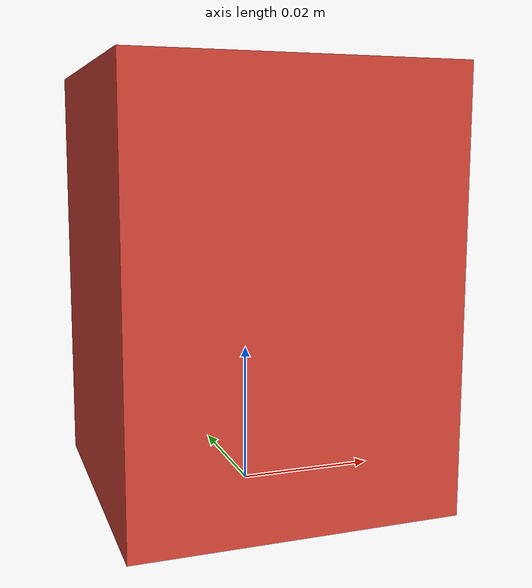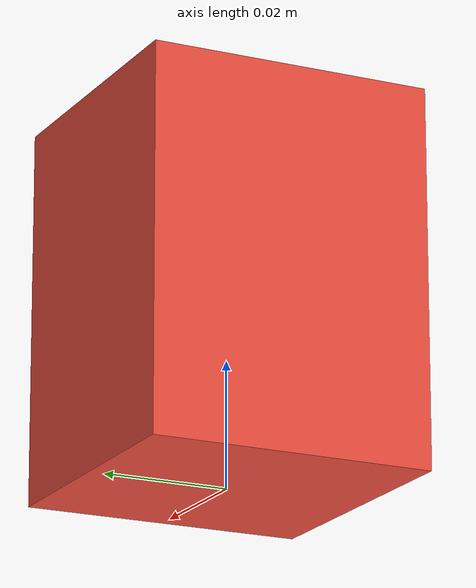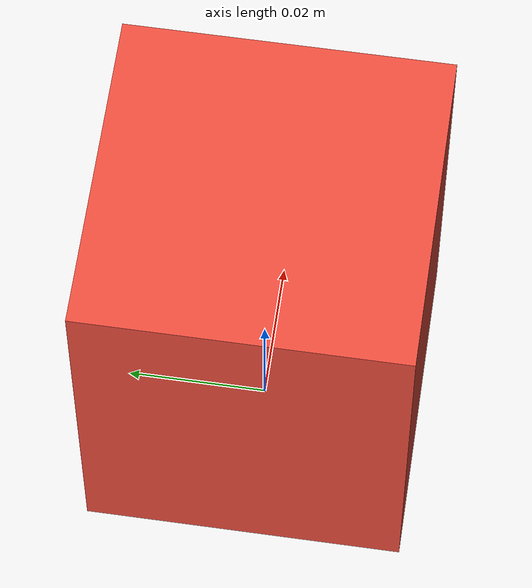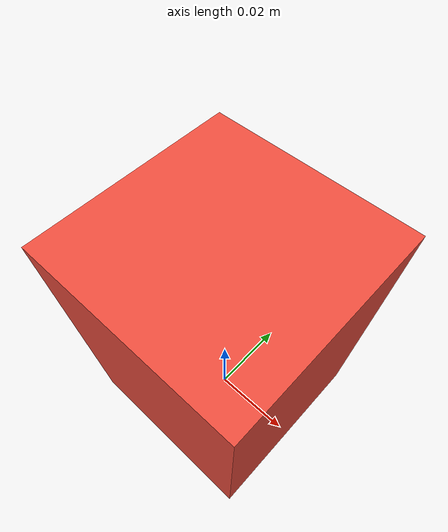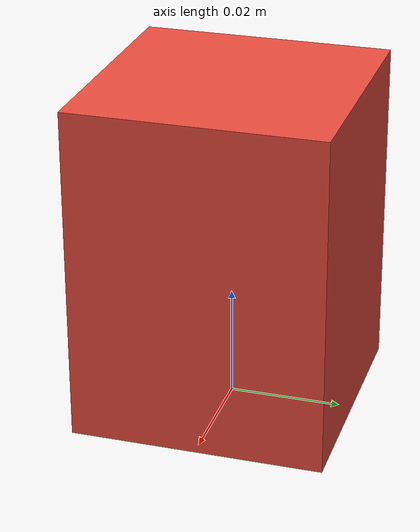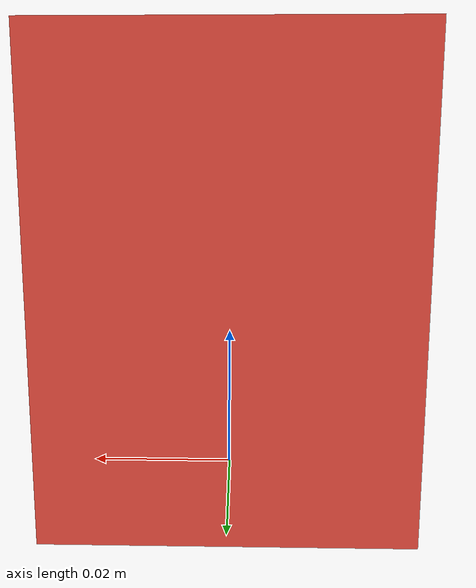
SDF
<?xml version="1.0" ?>
<sdf version="1.7">
  <model name="pick_target_block">
    <static>false</static>
    <allow_auto_disable>false</allow_auto_disable>
    <link name="block_link">
      <pose>0 0 0.03 0 0 0</pose>
      <inertial>
        <mass>0.05</mass>
        <inertia>
          <ixx>0.000023</ixx>
          <iyy>0.000023</iyy>
          <izz>0.000017</izz>
          <ixy>0.0</ixy>
          <ixz>0.0</ixz>
          <iyz>0.0</iyz>
        </inertia>
      </inertial>
      <collision name="block_collision">
        <geometry>
          <box>
            <size>0.045 0.045 0.06</size>
          </box>
        </geometry>
        <surface>
          <friction>
            <ode>
              <mu>15.0</mu>
              <mu2>15.0</mu2>
            </ode>
          </friction>
          <bounce>
            <restitution_coefficient>0.0</restitution_coefficient>
            <threshold>100000</threshold>
          </bounce>
          <contact>
            <ode>
              <kp>1000000.0</kp>
              <kd>50.0</kd>
              <min_depth>0.001</min_depth>
              <max_vel>0.0</max_vel>
            </ode>
          </contact>
        </surface>
      </collision>
      <visual name="block_visual">
        <geometry>
          <box>
            <size>0.045 0.045 0.06</size>
          </box>
        </geometry>
        <material>
          <ambient>0.80 0.22 0.18 1.0</ambient>
          <diffuse>0.92 0.30 0.24 1.0</diffuse>
        </material>
      </visual>
    </link>
  </model>
</sdf>
